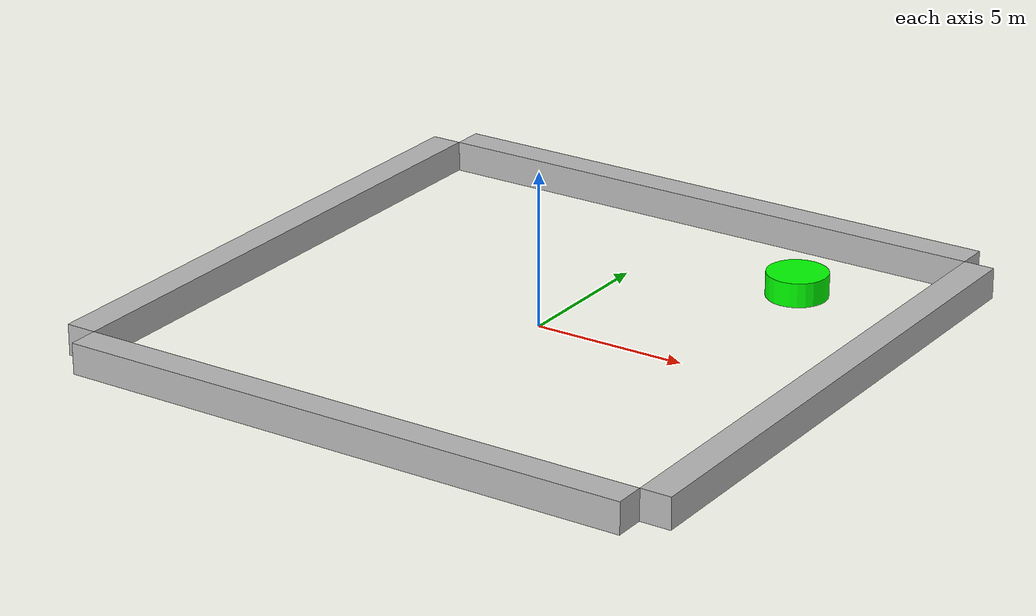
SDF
<sdf version='1.7'>
  <model name='room'>

    <joint name='world_to_base' type='fixed'>
      <pose relative_to='world'>0 0 0.5 0 -0 0</pose>
      <parent>world</parent>
      <child>floor</child>
    </joint>

    <link name='floor'>
      <inertial>
        <pose>0 0 0 0 -0 0</pose>
        <mass>1000000</mass>
        <inertia>
          <ixx>1000000</ixx>
          <ixy>0</ixy>
          <ixz>0</ixz>
          <iyy>1000000</iyy>
          <iyz>0</iyz>
          <izz>1000000</izz>
        </inertia>
      </inertial>
    </link>

    <joint name='floor_to_wall1' type='fixed'>
      <pose relative_to='floor'>10.0 0.5 0 0 -0 0</pose>
      <parent>floor</parent>
      <child>wall1</child>
    </joint>

    <link name='wall1'>
    <pose relative_to='floor'>10.0 0 0.5 0 0 0</pose>
      <inertial>
        <pose>0 0 0 0 -0 0</pose>
        <mass>100</mass>
        <inertia>
          <ixx>10</ixx>
          <ixy>0</ixy>
          <ixz>0</ixz>
          <iyy>10</iyy>
          <iyz>0</iyz>
          <izz>10</izz>
        </inertia>
      </inertial>
      <collision name='wall1_collision'>
        <pose>0 0 0 0 -0 0</pose>
        <geometry>
          <box>
            <size>1.0 19.00 1.0</size>
          </box>
        </geometry>
      </collision>
      <visual name='wall1_visual'>
        <pose>0 0 0 0 -0 0</pose>
        <geometry>
          <box>
            <size>1.0 19.00 1.0</size>
          </box>
        </geometry>
      </visual>
    </link>

    <joint name='floor_to_wall2' type='fixed'>
      <pose relative_to='floor'>-10.0 0 0.5 0 -0 0</pose>
      <parent>floor</parent>
      <child>wall2</child>
    </joint>

    <link name='wall2'>
    <pose relative_to='floor'>-10.0 0 0.5 0 0 0</pose>
      <inertial>
        <pose>0 0 0 0 -0 0</pose>
        <mass>100</mass>
        <inertia>
          <ixx>10</ixx>
          <ixy>0</ixy>
          <ixz>0</ixz>
          <iyy>10</iyy>
          <iyz>0</iyz>
          <izz>10</izz>
        </inertia>
      </inertial>
      <collision name='wall2_collision'>
        <pose>0 0 0 0 -0 0</pose>
        <geometry>
          <box>
            <size>1.0 19.00 1.0</size>
          </box>
        </geometry>
      </collision>
      <visual name='wall2_visual'>
        <pose>0 0 0 0 -0 0</pose>
        <geometry>
          <box>
            <size>1.0 19.00 1.0</size>
          </box>
        </geometry>
      </visual>
    </link>

    <joint name='floor_to_wall3' type='fixed'>
      <pose relative_to='floor'>0 10.0 0.5 0 -0 0</pose>
      <parent>floor</parent>
      <child>wall3</child>
    </joint>

    <link name='wall3'>
    <pose relative_to='floor'>0 10.0 0.5 0 -0 0</pose>
      <inertial>
        <pose>0 0 0 0 -0 0</pose>
        <mass>100</mass>
        <inertia>
          <ixx>10</ixx>
          <ixy>0</ixy>
          <ixz>0</ixz>
          <iyy>10</iyy>
          <iyz>0</iyz>
          <izz>10</izz>
        </inertia>
      </inertial>
      <collision name='wall3_collision'>
        <pose>0 0 0 0 -0 0</pose>
        <geometry>
          <box>
            <size>19.00 1.0 1.0</size>
          </box>
        </geometry>
      </collision>
      <visual name='wall3_visual'>
        <pose>0 0 0 0 -0 0</pose>
        <geometry>
          <box>
            <size>19.00 1.0 1.0</size>
          </box>
        </geometry>
      </visual>
    </link>

    <joint name='floor_to_wall4' type='fixed'>
      <pose relative_to='floor'>0 -10.0 0.5 0 -0 0</pose>
      <parent>floor</parent>
      <child>wall4</child>
    </joint>

    <link name='wall4'>
    <pose relative_to='floor'>0 -10.0 0.5 0 -0 0</pose>
      <inertial>
        <pose>0 0 0 0 -0 0</pose>
        <mass>100</mass>
        <inertia>
          <ixx>10</ixx>
          <ixy>0</ixy>
          <ixz>0</ixz>
          <iyy>10</iyy>
          <iyz>0</iyz>
          <izz>10</izz>
        </inertia>
      </inertial>
      <collision name='wall4_collision'>
        <pose>0 0 0 0 -0 0</pose>
        <geometry>
          <box>
            <size>19.00 1.0 1.0</size>
          </box>
        </geometry>
      </collision>
      <visual name='wall4_visual'>
        <pose>0 0 0 0 -0 0</pose>
        <geometry>
          <box>
            <size>19.00 1.0 1.0</size>
          </box>
        </geometry>
      </visual>
    </link>

    <joint name='floor_to_column' type='fixed'>
      <pose relative_to='floor'>5.0 7.0 0.1 0 -0 0</pose>
      <parent>floor</parent>
      <child>column</child>
    </joint>

    <link name='column'>
    <pose relative_to='floor'>5.0 7.0 0.1 0 -0 0</pose>
      <inertial>
        <pose>0 0 0 0 -0 0</pose>
        <mass>100</mass>
        <inertia>
          <ixx>10</ixx>
          <ixy>0</ixy>
          <ixz>0</ixz>
          <iyy>10</iyy>
          <iyz>0</iyz>
          <izz>10</izz>
        </inertia>
      </inertial>
      <collision name='column_collision'>
        <pose>0 0 0 0 -0 0</pose>
        <geometry>
          <cylinder>
            <radius>1.0</radius>
            <length>0.8</length>
          </cylinder>
        </geometry>
      </collision>
      <visual name='column_visual'>
        <pose>0 0 0 0 -0 0</pose>
        <geometry>
          <cylinder>
            <radius>1.0</radius>
            <length>0.8</length>
          </cylinder>
        </geometry>
        <material>
          <ambient>0 1 0 1</ambient>
          <diffuse>0 1 0 1</diffuse>
          <specular>1 1 1 1</specular>
        </material>
      </visual>
    </link>

  </model>
</sdf>
